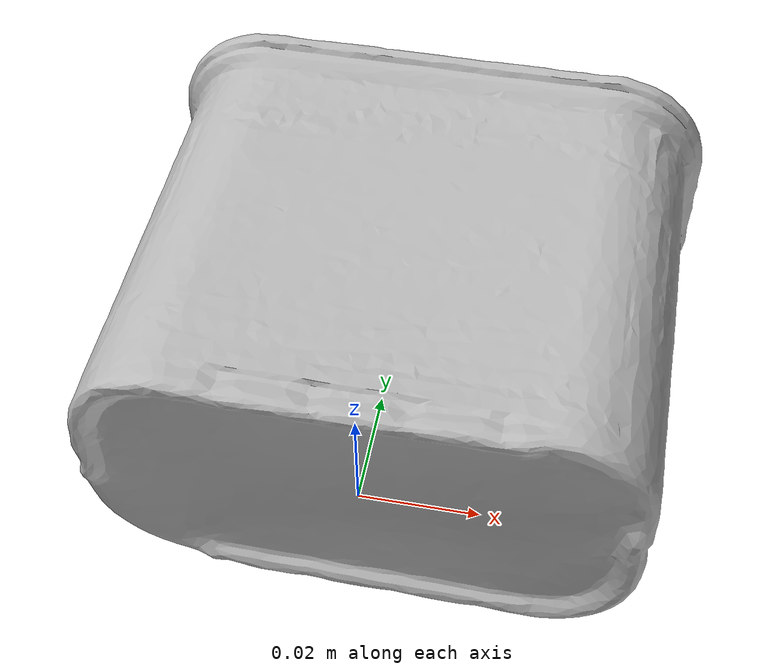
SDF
<?xml version='1.0'?>
<sdf version="1.4">
  <model name="potted_meat">
    <pose>0 0 0  0 0 0</pose>
    <static>0</static>
    <link name="body">
      <inertial>
	<pose>0 0.041 0  0 0 0</pose>
          <mass>0.37</mass>
          <inertia>
            <ixx>0.000284</ixx>
            <ixy>0.000000</ixy>
            <ixz>0.000000</ixz>
            <iyy>0.000367</iyy>
            <iyz>0.000000</iyz>
            <izz>0.000491</izz>
          </inertia>
      </inertial>
      <collision name="collision">
	<pose>0 0.037 0  0 0 0</pose>
        <geometry>
          <box>
	     <size> 0.097 0.085 0.05 </size> #0.09->0.082
  	  </box>
        </geometry>
        <surface>
            <friction>
              <ode>
                <mu>30.0</mu>
                <mu2>30.0</mu2>
              </ode>
            </friction>
            <contact>
              <ode>
                <kp>1000000.0</kp>
                <kd>100.0</kd>
                <max_vel>1.0</max_vel>
                <min_depth>0.002</min_depth>
              </ode>
            </contact>
        </surface>
      </collision>
      <visual name="visual">
        <geometry>
          <mesh>
	    <uri>model://potted_meat/meshes/potted.obj</uri>
            <scale>0.1 0.1 0.1</scale>
          </mesh>
        </geometry>
      </visual>
      <velocity_decay>
        <linear>0.000000</linear>
        <angular>0.000000</angular>
      </velocity_decay>
      <self_collide>0</self_collide>
      <kinematic>0</kinematic>
      <gravity>1</gravity>
    </link>
  </model>
</sdf>
